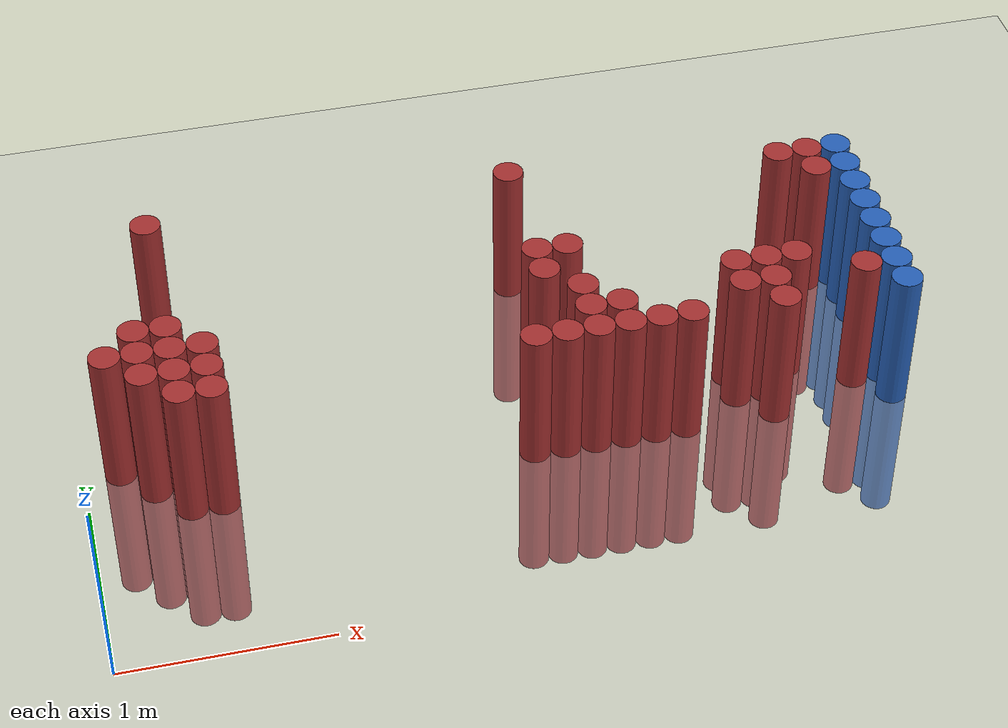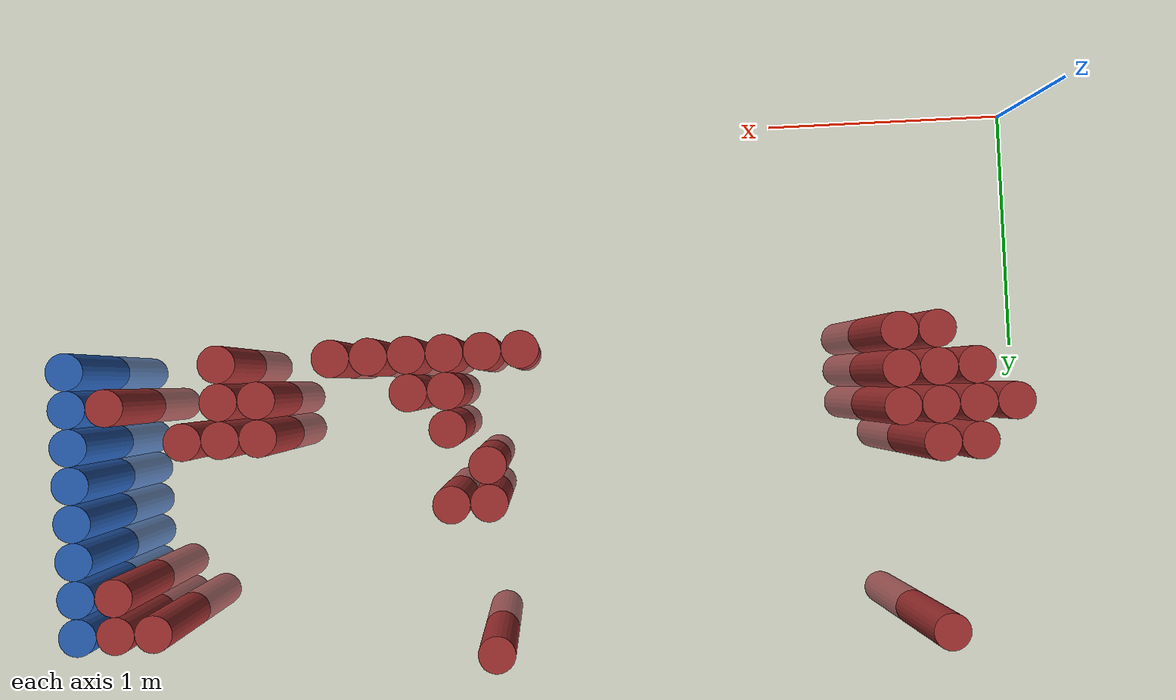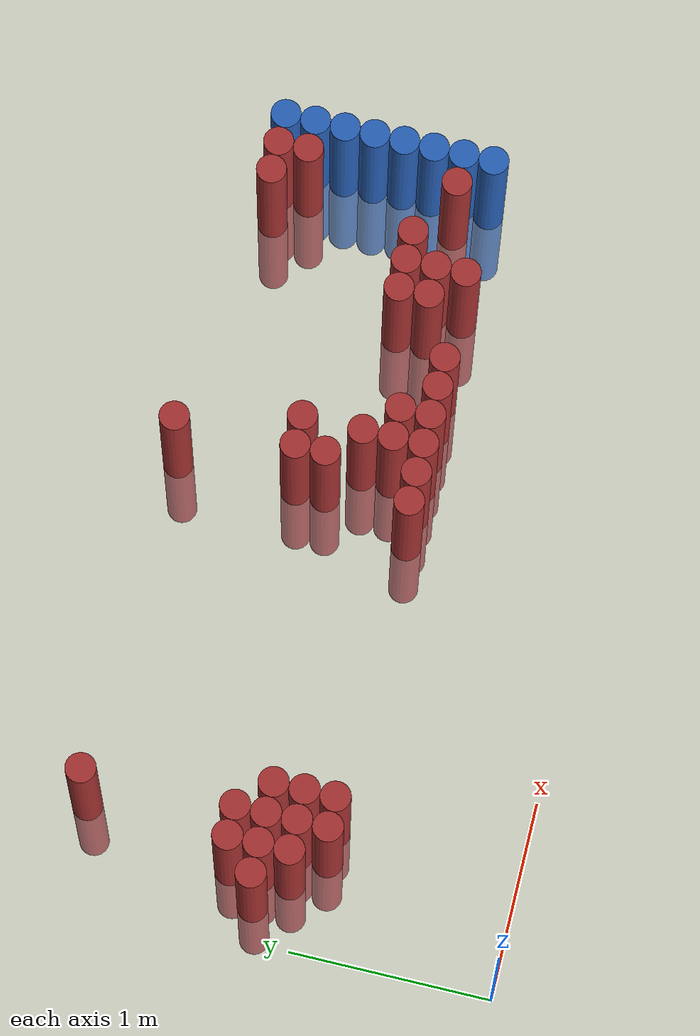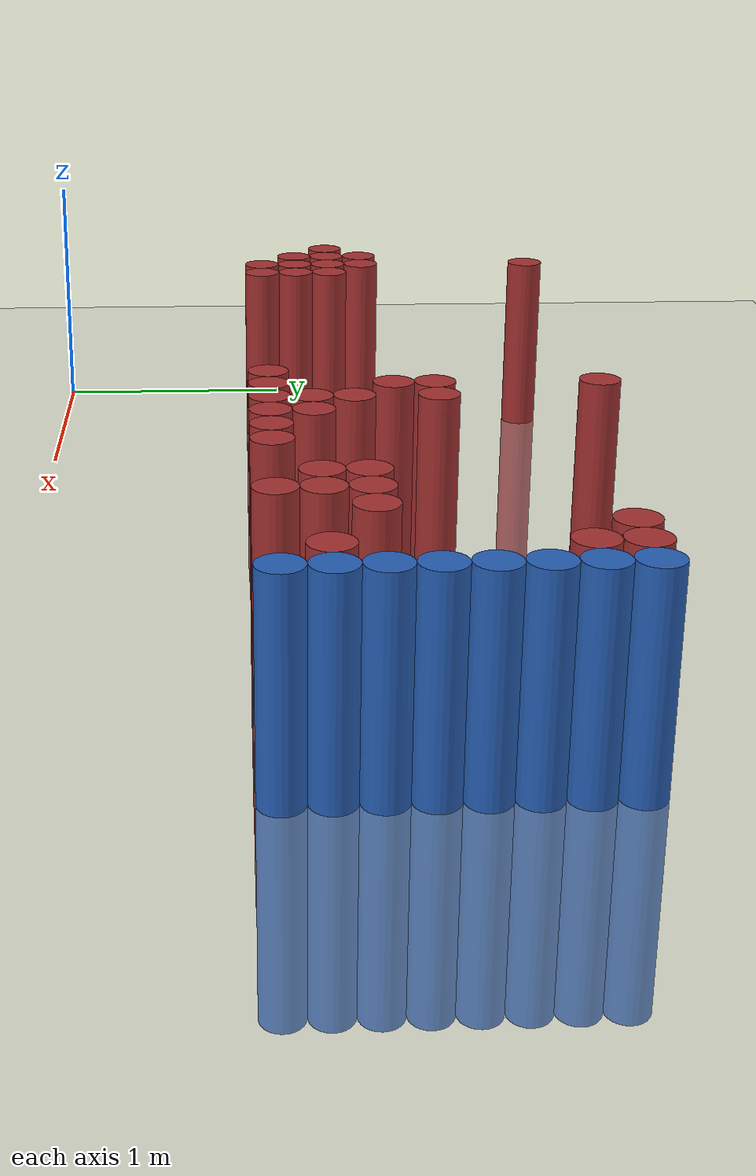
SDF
<sdf version="1.6">
 <world name="default">
  <model name="ground_plane">
   <static>1</static>
   <link name="link">
    <collision name="collision">
     <geometry><plane><normal>0 0 1</normal><size>100 100</size></plane></geometry>
     <surface><friction><ode><mu>100</mu><mu2>50</mu2></ode></friction></surface>
    </collision>
    <visual name="visual">
     <cast_shadows>0</cast_shadows>
     <geometry><plane><normal>0 0 1</normal><size>100 100</size></plane></geometry>
     <material>
      <script><uri>file://media/materials/scripts/gazebo.material</uri><name>Gazebo/Grey</name></script>
     </material>
    </visual>
   </link>
  </model>
  <model name="unit_cylinder_128">
   <static>1</static>
   <pose>3.925000 1.075000 0.000000 0.000000 0.000000 0.000000</pose>
   <link name="link">
    <inertial>
     <mass>1</mass>
     <inertia><ixx>0.145833</ixx><ixy>0</ixy><ixz>0</ixz><iyy>0.145833</iyy><iyz>0</iyz><izz>0.125</izz></inertia>
    </inertial>
    <collision name="collision">
     <geometry><cylinder><radius>0.075000</radius><length>1.5</length></cylinder></geometry>
    </collision>
    <visual name="visual">
     <geometry><cylinder><radius>0.075000</radius><length>1.5</length></cylinder></geometry>
     <material>
      <ambient>0.152000 0.379000 0.720000 1</ambient>
      <diffuse>0.152000 0.379000 0.720000 1</diffuse>
     </material>
     <material>
      <script><name>Gazebo/Grey</name><uri>file://media/materials/scripts/gazebo.material</uri></script>
     </material>
    </visual>
   </link>
  </model>
  <model name="unit_cylinder_130">
   <static>1</static>
   <pose>3.925000 1.225000 0.000000 0.000000 0.000000 0.000000</pose>
   <link name="link">
    <inertial>
     <mass>1</mass>
     <inertia><ixx>0.145833</ixx><ixy>0</ixy><ixz>0</ixz><iyy>0.145833</iyy><iyz>0</iyz><izz>0.125</izz></inertia>
    </inertial>
    <collision name="collision">
     <geometry><cylinder><radius>0.075000</radius><length>1.5</length></cylinder></geometry>
    </collision>
    <visual name="visual">
     <geometry><cylinder><radius>0.075000</radius><length>1.5</length></cylinder></geometry>
     <material>
      <ambient>0.152000 0.379000 0.720000 1</ambient>
      <diffuse>0.152000 0.379000 0.720000 1</diffuse>
     </material>
     <material>
      <script><name>Gazebo/Grey</name><uri>file://media/materials/scripts/gazebo.material</uri></script>
     </material>
    </visual>
   </link>
  </model>
  <model name="unit_cylinder_132">
   <static>1</static>
   <pose>3.925000 1.375000 0.000000 0.000000 0.000000 0.000000</pose>
   <link name="link">
    <inertial>
     <mass>1</mass>
     <inertia><ixx>0.145833</ixx><ixy>0</ixy><ixz>0</ixz><iyy>0.145833</iyy><iyz>0</iyz><izz>0.125</izz></inertia>
    </inertial>
    <collision name="collision">
     <geometry><cylinder><radius>0.075000</radius><length>1.5</length></cylinder></geometry>
    </collision>
    <visual name="visual">
     <geometry><cylinder><radius>0.075000</radius><length>1.5</length></cylinder></geometry>
     <material>
      <ambient>0.152000 0.379000 0.720000 1</ambient>
      <diffuse>0.152000 0.379000 0.720000 1</diffuse>
     </material>
     <material>
      <script><name>Gazebo/Grey</name><uri>file://media/materials/scripts/gazebo.material</uri></script>
     </material>
    </visual>
   </link>
  </model>
  <model name="unit_cylinder_134">
   <static>1</static>
   <pose>3.925000 1.525000 0.000000 0.000000 0.000000 0.000000</pose>
   <link name="link">
    <inertial>
     <mass>1</mass>
     <inertia><ixx>0.145833</ixx><ixy>0</ixy><ixz>0</ixz><iyy>0.145833</iyy><iyz>0</iyz><izz>0.125</izz></inertia>
    </inertial>
    <collision name="collision">
     <geometry><cylinder><radius>0.075000</radius><length>1.5</length></cylinder></geometry>
    </collision>
    <visual name="visual">
     <geometry><cylinder><radius>0.075000</radius><length>1.5</length></cylinder></geometry>
     <material>
      <ambient>0.152000 0.379000 0.720000 1</ambient>
      <diffuse>0.152000 0.379000 0.720000 1</diffuse>
     </material>
     <material>
      <script><name>Gazebo/Grey</name><uri>file://media/materials/scripts/gazebo.material</uri></script>
     </material>
    </visual>
   </link>
  </model>
  <model name="unit_cylinder_136">
   <static>1</static>
   <pose>3.925000 1.675000 0.000000 0.000000 0.000000 0.000000</pose>
   <link name="link">
    <inertial>
     <mass>1</mass>
     <inertia><ixx>0.145833</ixx><ixy>0</ixy><ixz>0</ixz><iyy>0.145833</iyy><iyz>0</iyz><izz>0.125</izz></inertia>
    </inertial>
    <collision name="collision">
     <geometry><cylinder><radius>0.075000</radius><length>1.5</length></cylinder></geometry>
    </collision>
    <visual name="visual">
     <geometry><cylinder><radius>0.075000</radius><length>1.5</length></cylinder></geometry>
     <material>
      <ambient>0.152000 0.379000 0.720000 1</ambient>
      <diffuse>0.152000 0.379000 0.720000 1</diffuse>
     </material>
     <material>
      <script><name>Gazebo/Grey</name><uri>file://media/materials/scripts/gazebo.material</uri></script>
     </material>
    </visual>
   </link>
  </model>
  <model name="unit_cylinder_138">
   <static>1</static>
   <pose>3.925000 1.825000 0.000000 0.000000 0.000000 0.000000</pose>
   <link name="link">
    <inertial>
     <mass>1</mass>
     <inertia><ixx>0.145833</ixx><ixy>0</ixy><ixz>0</ixz><iyy>0.145833</iyy><iyz>0</iyz><izz>0.125</izz></inertia>
    </inertial>
    <collision name="collision">
     <geometry><cylinder><radius>0.075000</radius><length>1.5</length></cylinder></geometry>
    </collision>
    <visual name="visual">
     <geometry><cylinder><radius>0.075000</radius><length>1.5</length></cylinder></geometry>
     <material>
      <ambient>0.152000 0.379000 0.720000 1</ambient>
      <diffuse>0.152000 0.379000 0.720000 1</diffuse>
     </material>
     <material>
      <script><name>Gazebo/Grey</name><uri>file://media/materials/scripts/gazebo.material</uri></script>
     </material>
    </visual>
   </link>
  </model>
  <model name="unit_cylinder_140">
   <static>1</static>
   <pose>3.925000 1.975000 0.000000 0.000000 0.000000 0.000000</pose>
   <link name="link">
    <inertial>
     <mass>1</mass>
     <inertia><ixx>0.145833</ixx><ixy>0</ixy><ixz>0</ixz><iyy>0.145833</iyy><iyz>0</iyz><izz>0.125</izz></inertia>
    </inertial>
    <collision name="collision">
     <geometry><cylinder><radius>0.075000</radius><length>1.5</length></cylinder></geometry>
    </collision>
    <visual name="visual">
     <geometry><cylinder><radius>0.075000</radius><length>1.5</length></cylinder></geometry>
     <material>
      <ambient>0.152000 0.379000 0.720000 1</ambient>
      <diffuse>0.152000 0.379000 0.720000 1</diffuse>
     </material>
     <material>
      <script><name>Gazebo/Grey</name><uri>file://media/materials/scripts/gazebo.material</uri></script>
     </material>
    </visual>
   </link>
  </model>
  <model name="unit_cylinder_384">
   <static>1</static>
   <pose>0.175000 1.225000 0.000000 0.000000 0.000000 0.000000</pose>
   <link name="link">
    <inertial>
     <mass>1</mass>
     <inertia><ixx>0.145833</ixx><ixy>0</ixy><ixz>0</ixz><iyy>0.145833</iyy><iyz>0</iyz><izz>0.125</izz></inertia>
    </inertial>
    <collision name="collision">
     <geometry><cylinder><radius>0.075000</radius><length>1.5</length></cylinder></geometry>
    </collision>
    <visual name="visual">
     <geometry><cylinder><radius>0.075000</radius><length>1.5</length></cylinder></geometry>
     <material>
      <ambient>0.648000 0.192000 0.192000 1</ambient>
      <diffuse>0.648000 0.192000 0.192000 1</diffuse>
     </material>
     <material>
      <script><name>Gazebo/Grey</name><uri>file://media/materials/scripts/gazebo.material</uri></script>
     </material>
    </visual>
   </link>
  </model>
  <model name="unit_cylinder_387">
   <static>1</static>
   <pose>0.325000 1.075000 0.000000 0.000000 0.000000 0.000000</pose>
   <link name="link">
    <inertial>
     <mass>1</mass>
     <inertia><ixx>0.145833</ixx><ixy>0</ixy><ixz>0</ixz><iyy>0.145833</iyy><iyz>0</iyz><izz>0.125</izz></inertia>
    </inertial>
    <collision name="collision">
     <geometry><cylinder><radius>0.075000</radius><length>1.5</length></cylinder></geometry>
    </collision>
    <visual name="visual">
     <geometry><cylinder><radius>0.075000</radius><length>1.5</length></cylinder></geometry>
     <material>
      <ambient>0.648000 0.192000 0.192000 1</ambient>
      <diffuse>0.648000 0.192000 0.192000 1</diffuse>
     </material>
     <material>
      <script><name>Gazebo/Grey</name><uri>file://media/materials/scripts/gazebo.material</uri></script>
     </material>
    </visual>
   </link>
  </model>
  <model name="unit_cylinder_388">
   <static>1</static>
   <pose>0.325000 1.225000 0.000000 0.000000 0.000000 0.000000</pose>
   <link name="link">
    <inertial>
     <mass>1</mass>
     <inertia><ixx>0.145833</ixx><ixy>0</ixy><ixz>0</ixz><iyy>0.145833</iyy><iyz>0</iyz><izz>0.125</izz></inertia>
    </inertial>
    <collision name="collision">
     <geometry><cylinder><radius>0.075000</radius><length>1.5</length></cylinder></geometry>
    </collision>
    <visual name="visual">
     <geometry><cylinder><radius>0.075000</radius><length>1.5</length></cylinder></geometry>
     <material>
      <ambient>0.648000 0.192000 0.192000 1</ambient>
      <diffuse>0.648000 0.192000 0.192000 1</diffuse>
     </material>
     <material>
      <script><name>Gazebo/Grey</name><uri>file://media/materials/scripts/gazebo.material</uri></script>
     </material>
    </visual>
   </link>
  </model>
  <model name="unit_cylinder_389">
   <static>1</static>
   <pose>0.325000 1.375000 0.000000 0.000000 0.000000 0.000000</pose>
   <link name="link">
    <inertial>
     <mass>1</mass>
     <inertia><ixx>0.145833</ixx><ixy>0</ixy><ixz>0</ixz><iyy>0.145833</iyy><iyz>0</iyz><izz>0.125</izz></inertia>
    </inertial>
    <collision name="collision">
     <geometry><cylinder><radius>0.075000</radius><length>1.5</length></cylinder></geometry>
    </collision>
    <visual name="visual">
     <geometry><cylinder><radius>0.075000</radius><length>1.5</length></cylinder></geometry>
     <material>
      <ambient>0.648000 0.192000 0.192000 1</ambient>
      <diffuse>0.648000 0.192000 0.192000 1</diffuse>
     </material>
     <material>
      <script><name>Gazebo/Grey</name><uri>file://media/materials/scripts/gazebo.material</uri></script>
     </material>
    </visual>
   </link>
  </model>
  <model name="unit_cylinder_394">
   <static>1</static>
   <pose>0.475000 0.925000 0.000000 0.000000 0.000000 0.000000</pose>
   <link name="link">
    <inertial>
     <mass>1</mass>
     <inertia><ixx>0.145833</ixx><ixy>0</ixy><ixz>0</ixz><iyy>0.145833</iyy><iyz>0</iyz><izz>0.125</izz></inertia>
    </inertial>
    <collision name="collision">
     <geometry><cylinder><radius>0.075000</radius><length>1.5</length></cylinder></geometry>
    </collision>
    <visual name="visual">
     <geometry><cylinder><radius>0.075000</radius><length>1.5</length></cylinder></geometry>
     <material>
      <ambient>0.648000 0.192000 0.192000 1</ambient>
      <diffuse>0.648000 0.192000 0.192000 1</diffuse>
     </material>
     <material>
      <script><name>Gazebo/Grey</name><uri>file://media/materials/scripts/gazebo.material</uri></script>
     </material>
    </visual>
   </link>
  </model>
  <model name="unit_cylinder_395">
   <static>1</static>
   <pose>0.475000 1.075000 0.000000 0.000000 0.000000 0.000000</pose>
   <link name="link">
    <inertial>
     <mass>1</mass>
     <inertia><ixx>0.145833</ixx><ixy>0</ixy><ixz>0</ixz><iyy>0.145833</iyy><iyz>0</iyz><izz>0.125</izz></inertia>
    </inertial>
    <collision name="collision">
     <geometry><cylinder><radius>0.075000</radius><length>1.5</length></cylinder></geometry>
    </collision>
    <visual name="visual">
     <geometry><cylinder><radius>0.075000</radius><length>1.5</length></cylinder></geometry>
     <material>
      <ambient>0.648000 0.192000 0.192000 1</ambient>
      <diffuse>0.648000 0.192000 0.192000 1</diffuse>
     </material>
     <material>
      <script><name>Gazebo/Grey</name><uri>file://media/materials/scripts/gazebo.material</uri></script>
     </material>
    </visual>
   </link>
  </model>
  <model name="unit_cylinder_396">
   <static>1</static>
   <pose>0.475000 1.225000 0.000000 0.000000 0.000000 0.000000</pose>
   <link name="link">
    <inertial>
     <mass>1</mass>
     <inertia><ixx>0.145833</ixx><ixy>0</ixy><ixz>0</ixz><iyy>0.145833</iyy><iyz>0</iyz><izz>0.125</izz></inertia>
    </inertial>
    <collision name="collision">
     <geometry><cylinder><radius>0.075000</radius><length>1.5</length></cylinder></geometry>
    </collision>
    <visual name="visual">
     <geometry><cylinder><radius>0.075000</radius><length>1.5</length></cylinder></geometry>
     <material>
      <ambient>0.648000 0.192000 0.192000 1</ambient>
      <diffuse>0.648000 0.192000 0.192000 1</diffuse>
     </material>
     <material>
      <script><name>Gazebo/Grey</name><uri>file://media/materials/scripts/gazebo.material</uri></script>
     </material>
    </visual>
   </link>
  </model>
  <model name="unit_cylinder_397">
   <static>1</static>
   <pose>0.475000 1.375000 0.000000 0.000000 0.000000 0.000000</pose>
   <link name="link">
    <inertial>
     <mass>1</mass>
     <inertia><ixx>0.145833</ixx><ixy>0</ixy><ixz>0</ixz><iyy>0.145833</iyy><iyz>0</iyz><izz>0.125</izz></inertia>
    </inertial>
    <collision name="collision">
     <geometry><cylinder><radius>0.075000</radius><length>1.5</length></cylinder></geometry>
    </collision>
    <visual name="visual">
     <geometry><cylinder><radius>0.075000</radius><length>1.5</length></cylinder></geometry>
     <material>
      <ambient>0.648000 0.192000 0.192000 1</ambient>
      <diffuse>0.648000 0.192000 0.192000 1</diffuse>
     </material>
     <material>
      <script><name>Gazebo/Grey</name><uri>file://media/materials/scripts/gazebo.material</uri></script>
     </material>
    </visual>
   </link>
  </model>
  <model name="unit_cylinder_398">
   <static>1</static>
   <pose>0.475000 2.125000 0.000000 0.000000 0.000000 0.000000</pose>
   <link name="link">
    <inertial>
     <mass>1</mass>
     <inertia><ixx>0.145833</ixx><ixy>0</ixy><ixz>0</ixz><iyy>0.145833</iyy><iyz>0</iyz><izz>0.125</izz></inertia>
    </inertial>
    <collision name="collision">
     <geometry><cylinder><radius>0.075000</radius><length>1.5</length></cylinder></geometry>
    </collision>
    <visual name="visual">
     <geometry><cylinder><radius>0.075000</radius><length>1.5</length></cylinder></geometry>
     <material>
      <ambient>0.648000 0.192000 0.192000 1</ambient>
      <diffuse>0.648000 0.192000 0.192000 1</diffuse>
     </material>
     <material>
      <script><name>Gazebo/Grey</name><uri>file://media/materials/scripts/gazebo.material</uri></script>
     </material>
    </visual>
   </link>
  </model>
  <model name="unit_cylinder_401">
   <static>1</static>
   <pose>0.625000 0.925000 0.000000 0.000000 0.000000 0.000000</pose>
   <link name="link">
    <inertial>
     <mass>1</mass>
     <inertia><ixx>0.145833</ixx><ixy>0</ixy><ixz>0</ixz><iyy>0.145833</iyy><iyz>0</iyz><izz>0.125</izz></inertia>
    </inertial>
    <collision name="collision">
     <geometry><cylinder><radius>0.075000</radius><length>1.5</length></cylinder></geometry>
    </collision>
    <visual name="visual">
     <geometry><cylinder><radius>0.075000</radius><length>1.5</length></cylinder></geometry>
     <material>
      <ambient>0.648000 0.192000 0.192000 1</ambient>
      <diffuse>0.648000 0.192000 0.192000 1</diffuse>
     </material>
     <material>
      <script><name>Gazebo/Grey</name><uri>file://media/materials/scripts/gazebo.material</uri></script>
     </material>
    </visual>
   </link>
  </model>
  <model name="unit_cylinder_402">
   <static>1</static>
   <pose>0.625000 1.075000 0.000000 0.000000 0.000000 0.000000</pose>
   <link name="link">
    <inertial>
     <mass>1</mass>
     <inertia><ixx>0.145833</ixx><ixy>0</ixy><ixz>0</ixz><iyy>0.145833</iyy><iyz>0</iyz><izz>0.125</izz></inertia>
    </inertial>
    <collision name="collision">
     <geometry><cylinder><radius>0.075000</radius><length>1.5</length></cylinder></geometry>
    </collision>
    <visual name="visual">
     <geometry><cylinder><radius>0.075000</radius><length>1.5</length></cylinder></geometry>
     <material>
      <ambient>0.648000 0.192000 0.192000 1</ambient>
      <diffuse>0.648000 0.192000 0.192000 1</diffuse>
     </material>
     <material>
      <script><name>Gazebo/Grey</name><uri>file://media/materials/scripts/gazebo.material</uri></script>
     </material>
    </visual>
   </link>
  </model>
  <model name="unit_cylinder_403">
   <static>1</static>
   <pose>0.625000 1.225000 0.000000 0.000000 0.000000 0.000000</pose>
   <link name="link">
    <inertial>
     <mass>1</mass>
     <inertia><ixx>0.145833</ixx><ixy>0</ixy><ixz>0</ixz><iyy>0.145833</iyy><iyz>0</iyz><izz>0.125</izz></inertia>
    </inertial>
    <collision name="collision">
     <geometry><cylinder><radius>0.075000</radius><length>1.5</length></cylinder></geometry>
    </collision>
    <visual name="visual">
     <geometry><cylinder><radius>0.075000</radius><length>1.5</length></cylinder></geometry>
     <material>
      <ambient>0.648000 0.192000 0.192000 1</ambient>
      <diffuse>0.648000 0.192000 0.192000 1</diffuse>
     </material>
     <material>
      <script><name>Gazebo/Grey</name><uri>file://media/materials/scripts/gazebo.material</uri></script>
     </material>
    </visual>
   </link>
  </model>
  <model name="unit_cylinder_429">
   <static>1</static>
   <pose>2.125000 0.925000 0.000000 0.000000 0.000000 0.000000</pose>
   <link name="link">
    <inertial>
     <mass>1</mass>
     <inertia><ixx>0.145833</ixx><ixy>0</ixy><ixz>0</ixz><iyy>0.145833</iyy><iyz>0</iyz><izz>0.125</izz></inertia>
    </inertial>
    <collision name="collision">
     <geometry><cylinder><radius>0.075000</radius><length>1.5</length></cylinder></geometry>
    </collision>
    <visual name="visual">
     <geometry><cylinder><radius>0.075000</radius><length>1.5</length></cylinder></geometry>
     <material>
      <ambient>0.648000 0.192000 0.192000 1</ambient>
      <diffuse>0.648000 0.192000 0.192000 1</diffuse>
     </material>
     <material>
      <script><name>Gazebo/Grey</name><uri>file://media/materials/scripts/gazebo.material</uri></script>
     </material>
    </visual>
   </link>
  </model>
  <model name="unit_cylinder_433">
   <static>1</static>
   <pose>2.275000 0.925000 0.000000 0.000000 0.000000 0.000000</pose>
   <link name="link">
    <inertial>
     <mass>1</mass>
     <inertia><ixx>0.145833</ixx><ixy>0</ixy><ixz>0</ixz><iyy>0.145833</iyy><iyz>0</iyz><izz>0.125</izz></inertia>
    </inertial>
    <collision name="collision">
     <geometry><cylinder><radius>0.075000</radius><length>1.5</length></cylinder></geometry>
    </collision>
    <visual name="visual">
     <geometry><cylinder><radius>0.075000</radius><length>1.5</length></cylinder></geometry>
     <material>
      <ambient>0.648000 0.192000 0.192000 1</ambient>
      <diffuse>0.648000 0.192000 0.192000 1</diffuse>
     </material>
     <material>
      <script><name>Gazebo/Grey</name><uri>file://media/materials/scripts/gazebo.material</uri></script>
     </material>
    </visual>
   </link>
  </model>
  <model name="unit_cylinder_434">
   <static>1</static>
   <pose>2.275000 1.375000 0.000000 0.000000 0.000000 0.000000</pose>
   <link name="link">
    <inertial>
     <mass>1</mass>
     <inertia><ixx>0.145833</ixx><ixy>0</ixy><ixz>0</ixz><iyy>0.145833</iyy><iyz>0</iyz><izz>0.125</izz></inertia>
    </inertial>
    <collision name="collision">
     <geometry><cylinder><radius>0.075000</radius><length>1.5</length></cylinder></geometry>
    </collision>
    <visual name="visual">
     <geometry><cylinder><radius>0.075000</radius><length>1.5</length></cylinder></geometry>
     <material>
      <ambient>0.648000 0.192000 0.192000 1</ambient>
      <diffuse>0.648000 0.192000 0.192000 1</diffuse>
     </material>
     <material>
      <script><name>Gazebo/Grey</name><uri>file://media/materials/scripts/gazebo.material</uri></script>
     </material>
    </visual>
   </link>
  </model>
  <model name="unit_cylinder_435">
   <static>1</static>
   <pose>2.275000 1.525000 0.000000 0.000000 0.000000 0.000000</pose>
   <link name="link">
    <inertial>
     <mass>1</mass>
     <inertia><ixx>0.145833</ixx><ixy>0</ixy><ixz>0</ixz><iyy>0.145833</iyy><iyz>0</iyz><izz>0.125</izz></inertia>
    </inertial>
    <collision name="collision">
     <geometry><cylinder><radius>0.075000</radius><length>1.5</length></cylinder></geometry>
    </collision>
    <visual name="visual">
     <geometry><cylinder><radius>0.075000</radius><length>1.5</length></cylinder></geometry>
     <material>
      <ambient>0.648000 0.192000 0.192000 1</ambient>
      <diffuse>0.648000 0.192000 0.192000 1</diffuse>
     </material>
     <material>
      <script><name>Gazebo/Grey</name><uri>file://media/materials/scripts/gazebo.material</uri></script>
     </material>
    </visual>
   </link>
  </model>
  <model name="unit_cylinder_436">
   <static>1</static>
   <pose>2.275000 2.125000 0.000000 0.000000 0.000000 0.000000</pose>
   <link name="link">
    <inertial>
     <mass>1</mass>
     <inertia><ixx>0.145833</ixx><ixy>0</ixy><ixz>0</ixz><iyy>0.145833</iyy><iyz>0</iyz><izz>0.125</izz></inertia>
    </inertial>
    <collision name="collision">
     <geometry><cylinder><radius>0.075000</radius><length>1.5</length></cylinder></geometry>
    </collision>
    <visual name="visual">
     <geometry><cylinder><radius>0.075000</radius><length>1.5</length></cylinder></geometry>
     <material>
      <ambient>0.648000 0.192000 0.192000 1</ambient>
      <diffuse>0.648000 0.192000 0.192000 1</diffuse>
     </material>
     <material>
      <script><name>Gazebo/Grey</name><uri>file://media/materials/scripts/gazebo.material</uri></script>
     </material>
    </visual>
   </link>
  </model>
  <model name="unit_cylinder_439">
   <static>1</static>
   <pose>2.425000 0.925000 0.000000 0.000000 0.000000 0.000000</pose>
   <link name="link">
    <inertial>
     <mass>1</mass>
     <inertia><ixx>0.145833</ixx><ixy>0</ixy><ixz>0</ixz><iyy>0.145833</iyy><iyz>0</iyz><izz>0.125</izz></inertia>
    </inertial>
    <collision name="collision">
     <geometry><cylinder><radius>0.075000</radius><length>1.5</length></cylinder></geometry>
    </collision>
    <visual name="visual">
     <geometry><cylinder><radius>0.075000</radius><length>1.5</length></cylinder></geometry>
     <material>
      <ambient>0.648000 0.192000 0.192000 1</ambient>
      <diffuse>0.648000 0.192000 0.192000 1</diffuse>
     </material>
     <material>
      <script><name>Gazebo/Grey</name><uri>file://media/materials/scripts/gazebo.material</uri></script>
     </material>
    </visual>
   </link>
  </model>
  <model name="unit_cylinder_440">
   <static>1</static>
   <pose>2.425000 1.075000 0.000000 0.000000 0.000000 0.000000</pose>
   <link name="link">
    <inertial>
     <mass>1</mass>
     <inertia><ixx>0.145833</ixx><ixy>0</ixy><ixz>0</ixz><iyy>0.145833</iyy><iyz>0</iyz><izz>0.125</izz></inertia>
    </inertial>
    <collision name="collision">
     <geometry><cylinder><radius>0.075000</radius><length>1.5</length></cylinder></geometry>
    </collision>
    <visual name="visual">
     <geometry><cylinder><radius>0.075000</radius><length>1.5</length></cylinder></geometry>
     <material>
      <ambient>0.648000 0.192000 0.192000 1</ambient>
      <diffuse>0.648000 0.192000 0.192000 1</diffuse>
     </material>
     <material>
      <script><name>Gazebo/Grey</name><uri>file://media/materials/scripts/gazebo.material</uri></script>
     </material>
    </visual>
   </link>
  </model>
  <model name="unit_cylinder_441">
   <static>1</static>
   <pose>2.425000 1.225000 0.000000 0.000000 0.000000 0.000000</pose>
   <link name="link">
    <inertial>
     <mass>1</mass>
     <inertia><ixx>0.145833</ixx><ixy>0</ixy><ixz>0</ixz><iyy>0.145833</iyy><iyz>0</iyz><izz>0.125</izz></inertia>
    </inertial>
    <collision name="collision">
     <geometry><cylinder><radius>0.075000</radius><length>1.5</length></cylinder></geometry>
    </collision>
    <visual name="visual">
     <geometry><cylinder><radius>0.075000</radius><length>1.5</length></cylinder></geometry>
     <material>
      <ambient>0.648000 0.192000 0.192000 1</ambient>
      <diffuse>0.648000 0.192000 0.192000 1</diffuse>
     </material>
     <material>
      <script><name>Gazebo/Grey</name><uri>file://media/materials/scripts/gazebo.material</uri></script>
     </material>
    </visual>
   </link>
  </model>
  <model name="unit_cylinder_442">
   <static>1</static>
   <pose>2.425000 1.525000 0.000000 0.000000 0.000000 0.000000</pose>
   <link name="link">
    <inertial>
     <mass>1</mass>
     <inertia><ixx>0.145833</ixx><ixy>0</ixy><ixz>0</ixz><iyy>0.145833</iyy><iyz>0</iyz><izz>0.125</izz></inertia>
    </inertial>
    <collision name="collision">
     <geometry><cylinder><radius>0.075000</radius><length>1.5</length></cylinder></geometry>
    </collision>
    <visual name="visual">
     <geometry><cylinder><radius>0.075000</radius><length>1.5</length></cylinder></geometry>
     <material>
      <ambient>0.648000 0.192000 0.192000 1</ambient>
      <diffuse>0.648000 0.192000 0.192000 1</diffuse>
     </material>
     <material>
      <script><name>Gazebo/Grey</name><uri>file://media/materials/scripts/gazebo.material</uri></script>
     </material>
    </visual>
   </link>
  </model>
  <model name="unit_cylinder_446">
   <static>1</static>
   <pose>2.575000 0.925000 0.000000 0.000000 0.000000 0.000000</pose>
   <link name="link">
    <inertial>
     <mass>1</mass>
     <inertia><ixx>0.145833</ixx><ixy>0</ixy><ixz>0</ixz><iyy>0.145833</iyy><iyz>0</iyz><izz>0.125</izz></inertia>
    </inertial>
    <collision name="collision">
     <geometry><cylinder><radius>0.075000</radius><length>1.5</length></cylinder></geometry>
    </collision>
    <visual name="visual">
     <geometry><cylinder><radius>0.075000</radius><length>1.5</length></cylinder></geometry>
     <material>
      <ambient>0.648000 0.192000 0.192000 1</ambient>
      <diffuse>0.648000 0.192000 0.192000 1</diffuse>
     </material>
     <material>
      <script><name>Gazebo/Grey</name><uri>file://media/materials/scripts/gazebo.material</uri></script>
     </material>
    </visual>
   </link>
  </model>
  <model name="unit_cylinder_447">
   <static>1</static>
   <pose>2.575000 1.075000 0.000000 0.000000 0.000000 0.000000</pose>
   <link name="link">
    <inertial>
     <mass>1</mass>
     <inertia><ixx>0.145833</ixx><ixy>0</ixy><ixz>0</ixz><iyy>0.145833</iyy><iyz>0</iyz><izz>0.125</izz></inertia>
    </inertial>
    <collision name="collision">
     <geometry><cylinder><radius>0.075000</radius><length>1.5</length></cylinder></geometry>
    </collision>
    <visual name="visual">
     <geometry><cylinder><radius>0.075000</radius><length>1.5</length></cylinder></geometry>
     <material>
      <ambient>0.648000 0.192000 0.192000 1</ambient>
      <diffuse>0.648000 0.192000 0.192000 1</diffuse>
     </material>
     <material>
      <script><name>Gazebo/Grey</name><uri>file://media/materials/scripts/gazebo.material</uri></script>
     </material>
    </visual>
   </link>
  </model>
  <model name="unit_cylinder_449">
   <static>1</static>
   <pose>2.725000 0.925000 0.000000 0.000000 0.000000 0.000000</pose>
   <link name="link">
    <inertial>
     <mass>1</mass>
     <inertia><ixx>0.145833</ixx><ixy>0</ixy><ixz>0</ixz><iyy>0.145833</iyy><iyz>0</iyz><izz>0.125</izz></inertia>
    </inertial>
    <collision name="collision">
     <geometry><cylinder><radius>0.075000</radius><length>1.5</length></cylinder></geometry>
    </collision>
    <visual name="visual">
     <geometry><cylinder><radius>0.075000</radius><length>1.5</length></cylinder></geometry>
     <material>
      <ambient>0.648000 0.192000 0.192000 1</ambient>
      <diffuse>0.648000 0.192000 0.192000 1</diffuse>
     </material>
     <material>
      <script><name>Gazebo/Grey</name><uri>file://media/materials/scripts/gazebo.material</uri></script>
     </material>
    </visual>
   </link>
  </model>
  <model name="unit_cylinder_452">
   <static>1</static>
   <pose>2.875000 0.925000 0.000000 0.000000 0.000000 0.000000</pose>
   <link name="link">
    <inertial>
     <mass>1</mass>
     <inertia><ixx>0.145833</ixx><ixy>0</ixy><ixz>0</ixz><iyy>0.145833</iyy><iyz>0</iyz><izz>0.125</izz></inertia>
    </inertial>
    <collision name="collision">
     <geometry><cylinder><radius>0.075000</radius><length>1.5</length></cylinder></geometry>
    </collision>
    <visual name="visual">
     <geometry><cylinder><radius>0.075000</radius><length>1.5</length></cylinder></geometry>
     <material>
      <ambient>0.648000 0.192000 0.192000 1</ambient>
      <diffuse>0.648000 0.192000 0.192000 1</diffuse>
     </material>
     <material>
      <script><name>Gazebo/Grey</name><uri>file://media/materials/scripts/gazebo.material</uri></script>
     </material>
    </visual>
   </link>
  </model>
  <model name="unit_cylinder_465">
   <static>1</static>
   <pose>3.175000 1.075000 0.000000 0.000000 0.000000 0.000000</pose>
   <link name="link">
    <inertial>
     <mass>1</mass>
     <inertia><ixx>0.145833</ixx><ixy>0</ixy><ixz>0</ixz><iyy>0.145833</iyy><iyz>0</iyz><izz>0.125</izz></inertia>
    </inertial>
    <collision name="collision">
     <geometry><cylinder><radius>0.075000</radius><length>1.5</length></cylinder></geometry>
    </collision>
    <visual name="visual">
     <geometry><cylinder><radius>0.075000</radius><length>1.5</length></cylinder></geometry>
     <material>
      <ambient>0.648000 0.192000 0.192000 1</ambient>
      <diffuse>0.648000 0.192000 0.192000 1</diffuse>
     </material>
     <material>
      <script><name>Gazebo/Grey</name><uri>file://media/materials/scripts/gazebo.material</uri></script>
     </material>
    </visual>
   </link>
  </model>
  <model name="unit_cylinder_466">
   <static>1</static>
   <pose>3.175000 1.225000 0.000000 0.000000 0.000000 0.000000</pose>
   <link name="link">
    <inertial>
     <mass>1</mass>
     <inertia><ixx>0.145833</ixx><ixy>0</ixy><ixz>0</ixz><iyy>0.145833</iyy><iyz>0</iyz><izz>0.125</izz></inertia>
    </inertial>
    <collision name="collision">
     <geometry><cylinder><radius>0.075000</radius><length>1.5</length></cylinder></geometry>
    </collision>
    <visual name="visual">
     <geometry><cylinder><radius>0.075000</radius><length>1.5</length></cylinder></geometry>
     <material>
      <ambient>0.648000 0.192000 0.192000 1</ambient>
      <diffuse>0.648000 0.192000 0.192000 1</diffuse>
     </material>
     <material>
      <script><name>Gazebo/Grey</name><uri>file://media/materials/scripts/gazebo.material</uri></script>
     </material>
    </visual>
   </link>
  </model>
  <model name="unit_cylinder_467">
   <static>1</static>
   <pose>3.325000 0.925000 0.000000 0.000000 0.000000 0.000000</pose>
   <link name="link">
    <inertial>
     <mass>1</mass>
     <inertia><ixx>0.145833</ixx><ixy>0</ixy><ixz>0</ixz><iyy>0.145833</iyy><iyz>0</iyz><izz>0.125</izz></inertia>
    </inertial>
    <collision name="collision">
     <geometry><cylinder><radius>0.075000</radius><length>1.5</length></cylinder></geometry>
    </collision>
    <visual name="visual">
     <geometry><cylinder><radius>0.075000</radius><length>1.5</length></cylinder></geometry>
     <material>
      <ambient>0.648000 0.192000 0.192000 1</ambient>
      <diffuse>0.648000 0.192000 0.192000 1</diffuse>
     </material>
     <material>
      <script><name>Gazebo/Grey</name><uri>file://media/materials/scripts/gazebo.material</uri></script>
     </material>
    </visual>
   </link>
  </model>
  <model name="unit_cylinder_468">
   <static>1</static>
   <pose>3.325000 1.075000 0.000000 0.000000 0.000000 0.000000</pose>
   <link name="link">
    <inertial>
     <mass>1</mass>
     <inertia><ixx>0.145833</ixx><ixy>0</ixy><ixz>0</ixz><iyy>0.145833</iyy><iyz>0</iyz><izz>0.125</izz></inertia>
    </inertial>
    <collision name="collision">
     <geometry><cylinder><radius>0.075000</radius><length>1.5</length></cylinder></geometry>
    </collision>
    <visual name="visual">
     <geometry><cylinder><radius>0.075000</radius><length>1.5</length></cylinder></geometry>
     <material>
      <ambient>0.648000 0.192000 0.192000 1</ambient>
      <diffuse>0.648000 0.192000 0.192000 1</diffuse>
     </material>
     <material>
      <script><name>Gazebo/Grey</name><uri>file://media/materials/scripts/gazebo.material</uri></script>
     </material>
    </visual>
   </link>
  </model>
  <model name="unit_cylinder_469">
   <static>1</static>
   <pose>3.325000 1.225000 0.000000 0.000000 0.000000 0.000000</pose>
   <link name="link">
    <inertial>
     <mass>1</mass>
     <inertia><ixx>0.145833</ixx><ixy>0</ixy><ixz>0</ixz><iyy>0.145833</iyy><iyz>0</iyz><izz>0.125</izz></inertia>
    </inertial>
    <collision name="collision">
     <geometry><cylinder><radius>0.075000</radius><length>1.5</length></cylinder></geometry>
    </collision>
    <visual name="visual">
     <geometry><cylinder><radius>0.075000</radius><length>1.5</length></cylinder></geometry>
     <material>
      <ambient>0.648000 0.192000 0.192000 1</ambient>
      <diffuse>0.648000 0.192000 0.192000 1</diffuse>
     </material>
     <material>
      <script><name>Gazebo/Grey</name><uri>file://media/materials/scripts/gazebo.material</uri></script>
     </material>
    </visual>
   </link>
  </model>
  <model name="unit_cylinder_471">
   <static>1</static>
   <pose>3.475000 1.225000 0.000000 0.000000 0.000000 0.000000</pose>
   <link name="link">
    <inertial>
     <mass>1</mass>
     <inertia><ixx>0.145833</ixx><ixy>0</ixy><ixz>0</ixz><iyy>0.145833</iyy><iyz>0</iyz><izz>0.125</izz></inertia>
    </inertial>
    <collision name="collision">
     <geometry><cylinder><radius>0.075000</radius><length>1.5</length></cylinder></geometry>
    </collision>
    <visual name="visual">
     <geometry><cylinder><radius>0.075000</radius><length>1.5</length></cylinder></geometry>
     <material>
      <ambient>0.648000 0.192000 0.192000 1</ambient>
      <diffuse>0.648000 0.192000 0.192000 1</diffuse>
     </material>
     <material>
      <script><name>Gazebo/Grey</name><uri>file://media/materials/scripts/gazebo.material</uri></script>
     </material>
    </visual>
   </link>
  </model>
  <model name="unit_cylinder_473">
   <static>1</static>
   <pose>3.625000 1.975000 0.000000 0.000000 0.000000 0.000000</pose>
   <link name="link">
    <inertial>
     <mass>1</mass>
     <inertia><ixx>0.145833</ixx><ixy>0</ixy><ixz>0</ixz><iyy>0.145833</iyy><iyz>0</iyz><izz>0.125</izz></inertia>
    </inertial>
    <collision name="collision">
     <geometry><cylinder><radius>0.075000</radius><length>1.5</length></cylinder></geometry>
    </collision>
    <visual name="visual">
     <geometry><cylinder><radius>0.075000</radius><length>1.5</length></cylinder></geometry>
     <material>
      <ambient>0.648000 0.192000 0.192000 1</ambient>
      <diffuse>0.648000 0.192000 0.192000 1</diffuse>
     </material>
     <material>
      <script><name>Gazebo/Grey</name><uri>file://media/materials/scripts/gazebo.material</uri></script>
     </material>
    </visual>
   </link>
  </model>
  <model name="unit_cylinder_481">
   <static>1</static>
   <pose>3.775000 1.075000 0.000000 0.000000 0.000000 0.000000</pose>
   <link name="link">
    <inertial>
     <mass>1</mass>
     <inertia><ixx>0.145833</ixx><ixy>0</ixy><ixz>0</ixz><iyy>0.145833</iyy><iyz>0</iyz><izz>0.125</izz></inertia>
    </inertial>
    <collision name="collision">
     <geometry><cylinder><radius>0.075000</radius><length>1.5</length></cylinder></geometry>
    </collision>
    <visual name="visual">
     <geometry><cylinder><radius>0.075000</radius><length>1.5</length></cylinder></geometry>
     <material>
      <ambient>0.648000 0.192000 0.192000 1</ambient>
      <diffuse>0.648000 0.192000 0.192000 1</diffuse>
     </material>
     <material>
      <script><name>Gazebo/Grey</name><uri>file://media/materials/scripts/gazebo.material</uri></script>
     </material>
    </visual>
   </link>
  </model>
  <model name="unit_cylinder_482">
   <static>1</static>
   <pose>3.775000 1.825000 0.000000 0.000000 0.000000 0.000000</pose>
   <link name="link">
    <inertial>
     <mass>1</mass>
     <inertia><ixx>0.145833</ixx><ixy>0</ixy><ixz>0</ixz><iyy>0.145833</iyy><iyz>0</iyz><izz>0.125</izz></inertia>
    </inertial>
    <collision name="collision">
     <geometry><cylinder><radius>0.075000</radius><length>1.5</length></cylinder></geometry>
    </collision>
    <visual name="visual">
     <geometry><cylinder><radius>0.075000</radius><length>1.5</length></cylinder></geometry>
     <material>
      <ambient>0.648000 0.192000 0.192000 1</ambient>
      <diffuse>0.648000 0.192000 0.192000 1</diffuse>
     </material>
     <material>
      <script><name>Gazebo/Grey</name><uri>file://media/materials/scripts/gazebo.material</uri></script>
     </material>
    </visual>
   </link>
  </model>
  <model name="unit_cylinder_483">
   <static>1</static>
   <pose>3.775000 1.975000 0.000000 0.000000 0.000000 0.000000</pose>
   <link name="link">
    <inertial>
     <mass>1</mass>
     <inertia><ixx>0.145833</ixx><ixy>0</ixy><ixz>0</ixz><iyy>0.145833</iyy><iyz>0</iyz><izz>0.125</izz></inertia>
    </inertial>
    <collision name="collision">
     <geometry><cylinder><radius>0.075000</radius><length>1.5</length></cylinder></geometry>
    </collision>
    <visual name="visual">
     <geometry><cylinder><radius>0.075000</radius><length>1.5</length></cylinder></geometry>
     <material>
      <ambient>0.648000 0.192000 0.192000 1</ambient>
      <diffuse>0.648000 0.192000 0.192000 1</diffuse>
     </material>
     <material>
      <script><name>Gazebo/Grey</name><uri>file://media/materials/scripts/gazebo.material</uri></script>
     </material>
    </visual>
   </link>
  </model>
  <model name="unit_cylinder_517">
   <static>1</static>
   <pose>3.925000 0.925000 0.000000 0.000000 0.000000 0.000000</pose>
   <link name="link">
    <inertial>
     <mass>1</mass>
     <inertia><ixx>0.145833</ixx><ixy>0</ixy><ixz>0</ixz><iyy>0.145833</iyy><iyz>0</iyz><izz>0.125</izz></inertia>
    </inertial>
    <collision name="collision">
     <geometry><cylinder><radius>0.075000</radius><length>1.5</length></cylinder></geometry>
    </collision>
    <visual name="visual">
     <geometry><cylinder><radius>0.075000</radius><length>1.5</length></cylinder></geometry>
     <material>
      <ambient>0.152000 0.379000 0.720000 1</ambient>
      <diffuse>0.152000 0.379000 0.720000 1</diffuse>
     </material>
     <material>
      <script><name>Gazebo/Grey</name><uri>file://media/materials/scripts/gazebo.material</uri></script>
     </material>
    </visual>
   </link>
  </model>
  <model name="unit_cylinder_518">
   <static>1</static>
   <pose>3.925000 1.075000 0.000000 0.000000 0.000000 0.000000</pose>
   <link name="link">
    <inertial>
     <mass>1</mass>
     <inertia><ixx>0.145833</ixx><ixy>0</ixy><ixz>0</ixz><iyy>0.145833</iyy><iyz>0</iyz><izz>0.125</izz></inertia>
    </inertial>
    <collision name="collision">
     <geometry><cylinder><radius>0.075000</radius><length>1.5</length></cylinder></geometry>
    </collision>
    <visual name="visual">
     <geometry><cylinder><radius>0.075000</radius><length>1.5</length></cylinder></geometry>
     <material>
      <ambient>0.152000 0.379000 0.720000 1</ambient>
      <diffuse>0.152000 0.379000 0.720000 1</diffuse>
     </material>
     <material>
      <script><name>Gazebo/Grey</name><uri>file://media/materials/scripts/gazebo.material</uri></script>
     </material>
    </visual>
   </link>
  </model>
  <model name="unit_cylinder_519">
   <static>1</static>
   <pose>3.925000 1.225000 0.000000 0.000000 0.000000 0.000000</pose>
   <link name="link">
    <inertial>
     <mass>1</mass>
     <inertia><ixx>0.145833</ixx><ixy>0</ixy><ixz>0</ixz><iyy>0.145833</iyy><iyz>0</iyz><izz>0.125</izz></inertia>
    </inertial>
    <collision name="collision">
     <geometry><cylinder><radius>0.075000</radius><length>1.5</length></cylinder></geometry>
    </collision>
    <visual name="visual">
     <geometry><cylinder><radius>0.075000</radius><length>1.5</length></cylinder></geometry>
     <material>
      <ambient>0.152000 0.379000 0.720000 1</ambient>
      <diffuse>0.152000 0.379000 0.720000 1</diffuse>
     </material>
     <material>
      <script><name>Gazebo/Grey</name><uri>file://media/materials/scripts/gazebo.material</uri></script>
     </material>
    </visual>
   </link>
  </model>
  <model name="unit_cylinder_520">
   <static>1</static>
   <pose>3.925000 1.375000 0.000000 0.000000 0.000000 0.000000</pose>
   <link name="link">
    <inertial>
     <mass>1</mass>
     <inertia><ixx>0.145833</ixx><ixy>0</ixy><ixz>0</ixz><iyy>0.145833</iyy><iyz>0</iyz><izz>0.125</izz></inertia>
    </inertial>
    <collision name="collision">
     <geometry><cylinder><radius>0.075000</radius><length>1.5</length></cylinder></geometry>
    </collision>
    <visual name="visual">
     <geometry><cylinder><radius>0.075000</radius><length>1.5</length></cylinder></geometry>
     <material>
      <ambient>0.152000 0.379000 0.720000 1</ambient>
      <diffuse>0.152000 0.379000 0.720000 1</diffuse>
     </material>
     <material>
      <script><name>Gazebo/Grey</name><uri>file://media/materials/scripts/gazebo.material</uri></script>
     </material>
    </visual>
   </link>
  </model>
  <model name="unit_cylinder_521">
   <static>1</static>
   <pose>3.925000 1.525000 0.000000 0.000000 0.000000 0.000000</pose>
   <link name="link">
    <inertial>
     <mass>1</mass>
     <inertia><ixx>0.145833</ixx><ixy>0</ixy><ixz>0</ixz><iyy>0.145833</iyy><iyz>0</iyz><izz>0.125</izz></inertia>
    </inertial>
    <collision name="collision">
     <geometry><cylinder><radius>0.075000</radius><length>1.5</length></cylinder></geometry>
    </collision>
    <visual name="visual">
     <geometry><cylinder><radius>0.075000</radius><length>1.5</length></cylinder></geometry>
     <material>
      <ambient>0.152000 0.379000 0.720000 1</ambient>
      <diffuse>0.152000 0.379000 0.720000 1</diffuse>
     </material>
     <material>
      <script><name>Gazebo/Grey</name><uri>file://media/materials/scripts/gazebo.material</uri></script>
     </material>
    </visual>
   </link>
  </model>
  <model name="unit_cylinder_522">
   <static>1</static>
   <pose>3.925000 1.675000 0.000000 0.000000 0.000000 0.000000</pose>
   <link name="link">
    <inertial>
     <mass>1</mass>
     <inertia><ixx>0.145833</ixx><ixy>0</ixy><ixz>0</ixz><iyy>0.145833</iyy><iyz>0</iyz><izz>0.125</izz></inertia>
    </inertial>
    <collision name="collision">
     <geometry><cylinder><radius>0.075000</radius><length>1.5</length></cylinder></geometry>
    </collision>
    <visual name="visual">
     <geometry><cylinder><radius>0.075000</radius><length>1.5</length></cylinder></geometry>
     <material>
      <ambient>0.152000 0.379000 0.720000 1</ambient>
      <diffuse>0.152000 0.379000 0.720000 1</diffuse>
     </material>
     <material>
      <script><name>Gazebo/Grey</name><uri>file://media/materials/scripts/gazebo.material</uri></script>
     </material>
    </visual>
   </link>
  </model>
  <model name="unit_cylinder_523">
   <static>1</static>
   <pose>3.925000 1.825000 0.000000 0.000000 0.000000 0.000000</pose>
   <link name="link">
    <inertial>
     <mass>1</mass>
     <inertia><ixx>0.145833</ixx><ixy>0</ixy><ixz>0</ixz><iyy>0.145833</iyy><iyz>0</iyz><izz>0.125</izz></inertia>
    </inertial>
    <collision name="collision">
     <geometry><cylinder><radius>0.075000</radius><length>1.5</length></cylinder></geometry>
    </collision>
    <visual name="visual">
     <geometry><cylinder><radius>0.075000</radius><length>1.5</length></cylinder></geometry>
     <material>
      <ambient>0.152000 0.379000 0.720000 1</ambient>
      <diffuse>0.152000 0.379000 0.720000 1</diffuse>
     </material>
     <material>
      <script><name>Gazebo/Grey</name><uri>file://media/materials/scripts/gazebo.material</uri></script>
     </material>
    </visual>
   </link>
  </model>
  <model name="unit_cylinder_524">
   <static>1</static>
   <pose>3.925000 1.975000 0.000000 0.000000 0.000000 0.000000</pose>
   <link name="link">
    <inertial>
     <mass>1</mass>
     <inertia><ixx>0.145833</ixx><ixy>0</ixy><ixz>0</ixz><iyy>0.145833</iyy><iyz>0</iyz><izz>0.125</izz></inertia>
    </inertial>
    <collision name="collision">
     <geometry><cylinder><radius>0.075000</radius><length>1.5</length></cylinder></geometry>
    </collision>
    <visual name="visual">
     <geometry><cylinder><radius>0.075000</radius><length>1.5</length></cylinder></geometry>
     <material>
      <ambient>0.152000 0.379000 0.720000 1</ambient>
      <diffuse>0.152000 0.379000 0.720000 1</diffuse>
     </material>
     <material>
      <script><name>Gazebo/Grey</name><uri>file://media/materials/scripts/gazebo.material</uri></script>
     </material>
    </visual>
   </link>
  </model>
 </world>
</sdf>
